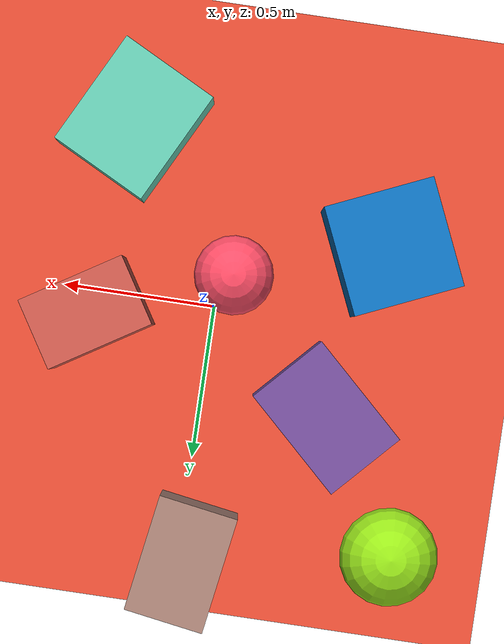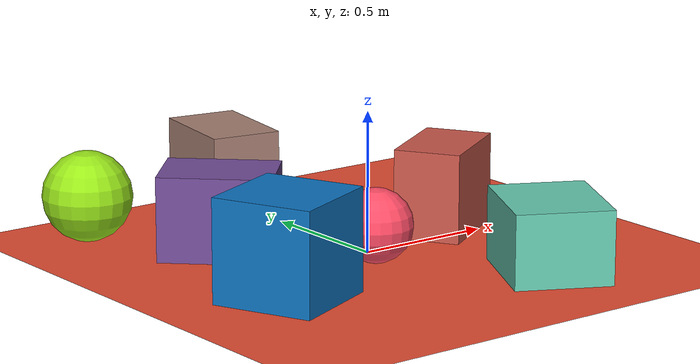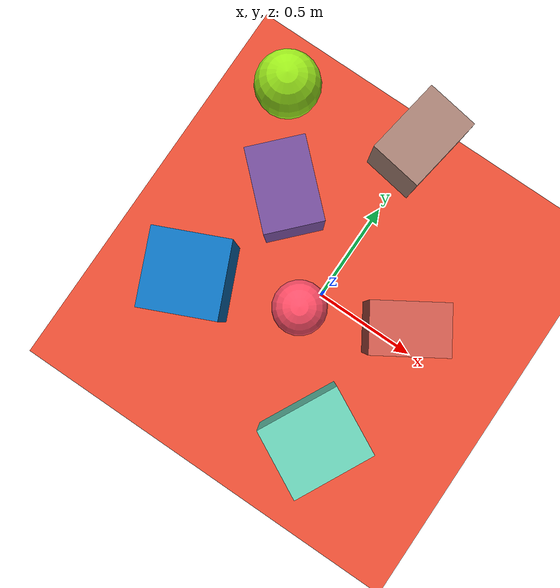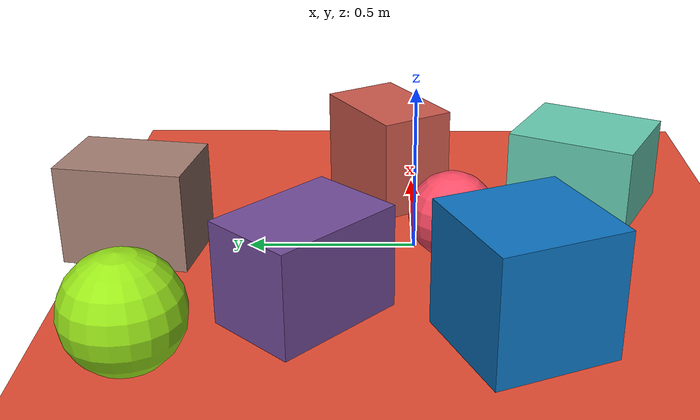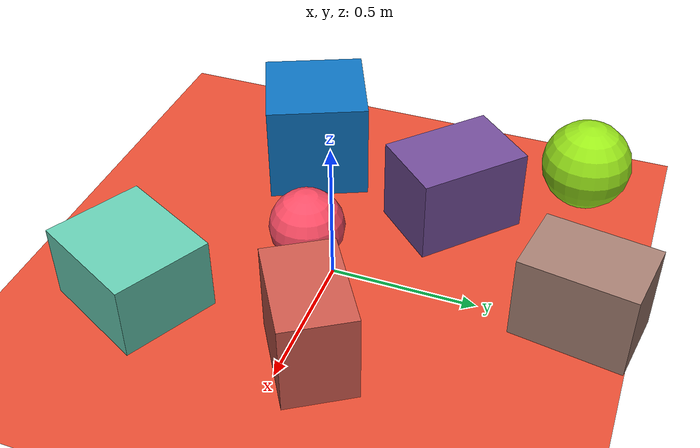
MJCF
<mujoco>
   <asset>
<texture type="skybox" builtin="gradient" rgb1="0.9 0.1 0.3" rgb2="0.3 0.9 0.9" width="256" height="256"/>
<texture name="gradient_0" builtin="gradient" rgb1="0.7 0.3 0.2" rgb2="0.9 0.4 0.4" width="200" height="200"/>
<texture name="checker_1" builtin="checker" rgb1="0.1 0.3 0.8" rgb2="0.0 0.6 0.7" width="200" height="200"/>
<texture name="checker_2" builtin="checker" rgb1="0.5 0.5 0.5" rgb2="0.8 0.5 0.4" width="200" height="200"/>
<texture name="gradient_3" builtin="gradient" rgb1="0.3 0.4 0.7" rgb2="0.6 0.2 0.5" width="200" height="200"/>
<texture name="flat_4" builtin="flat" rgb1="0.6 0.9 0.1" rgb2="0.6 0.9 0.1"  width="200" height="200"/>
<texture name="flat_5" builtin="flat" rgb1="1.0 0.3 0.4" rgb2="1.0 0.3 0.4"  width="200" height="200"/>
<texture name="checker_6" builtin="checker" rgb1="0.3 0.7 0.7" rgb2="0.5 0.9 0.7" width="200" height="200"/><material name="gradient_0_mat" reflectance="0" texture="gradient_0" texuniform="true"/>
<material name="checker_1_mat" reflectance="0" texrepeat="2 2" texture="checker_1" texuniform="false" />
<material name="checker_2_mat" reflectance="0" texrepeat="10 10" texture="checker_2" texuniform="false" />
<material name="gradient_3_mat" reflectance="0" texture="gradient_3" texuniform="true"/>
<material name="flat_4_mat" reflectance="0" texture="flat_4" texuniform="true"/>
<material name="flat_5_mat" reflectance="0" texture="flat_5" texuniform="true"/>
<material name="checker_6_mat" reflectance="0" texrepeat="10 10" texture="checker_6" texuniform="false" />
   </asset>

   <worldbody>
      <light diffuse=".9 .9 .9" pos="0 0 3" dir="0 0 -1"/>
     <geom type="plane" size="1 1 0.1" rgba="0.9 0.3 0.2 1"/>
<geom type="box" pos="0.4 0.08 0.16" size="0.18 0.12 0.16" material="gradient_0_mat" euler="0 0 32" />
<geom type="box" pos="-0.54 -0.27 0.18" size="0.18 0.18 0.18" material="checker_1_mat" euler="0 0 24" />
<geom type="box" pos="-0.02 0.83 0.15" size="0.19 0.13 0.15" material="checker_2_mat" euler="0 0 81" />
<geom type="box" pos="-0.41 0.3 0.15" size="0.14 0.2 0.15" material="gradient_3_mat" euler="0 0 47" />
<geom type="sphere" pos="-0.68 0.72 0.16" size="0.16 0.16 0.16" material="flat_4_mat" euler="0 0 19" />
<geom type="sphere" pos="-0.05 -0.11 0.13" size="0.13 0.13 0.13" material="flat_5_mat" euler="0 0 23" />
<geom type="box" pos="0.34 -0.56 0.13" size="0.2 0.17 0.13" material="checker_6_mat" euler="0 0 63" /><camera euler="60 0 180" fovy="60" name="camera1" pos="-0.2 -1.5 1"></camera>   </worldbody>
</mujoco>
